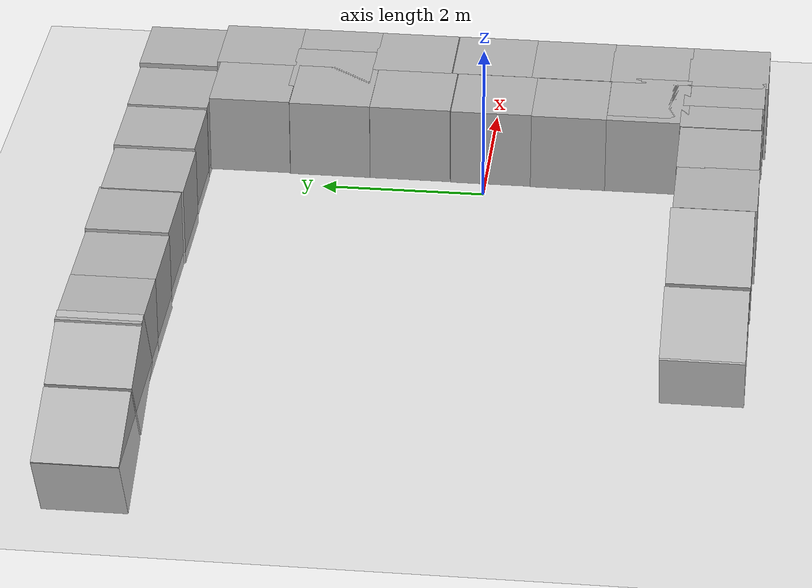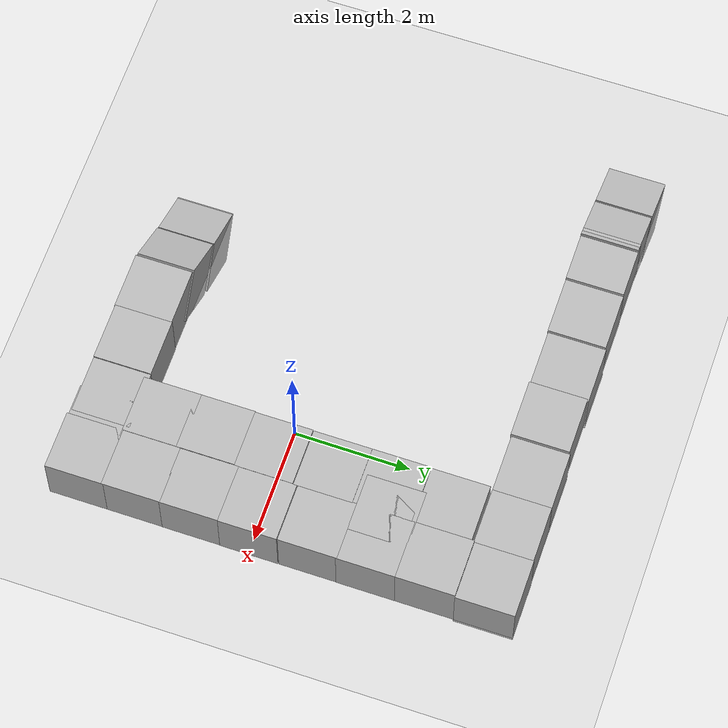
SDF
<sdf version='1.9'>
  <world name='empty'>
    <physics name='1ms' type='ignored'>
      <max_step_size>0.001</max_step_size>
      <real_time_factor>1</real_time_factor>
      <real_time_update_rate>1000</real_time_update_rate>
    </physics>
    <plugin name='gz::sim::systems::Physics' filename='ignition-gazebo-physics-system'/>
    <plugin name='gz::sim::systems::UserCommands' filename='ignition-gazebo-user-commands-system'/>
    <plugin name='gz::sim::systems::SceneBroadcaster' filename='ignition-gazebo-scene-broadcaster-system'/>
    <plugin name='gz::sim::systems::Contact' filename='ignition-gazebo-contact-system'/>
    <gravity>0 0 -9.8</gravity>
    <magnetic_field>6e-06 2.3e-05 -4.2e-05</magnetic_field>
    <atmosphere type='adiabatic'/>
    <scene>
      <ambient>0.4 0.4 0.4 1</ambient>
      <background>0.7 0.7 0.7 1</background>
      <shadows>true</shadows>
    </scene>
    <model name='ground_plane'>
      <static>true</static>
      <link name='link'>
        <collision name='collision'>
          <geometry>
            <plane>
              <normal>0 0 1</normal>
              <size>100 100</size>
            </plane>
          </geometry>
          <surface>
            <friction>
              <ode/>
            </friction>
            <bounce/>
            <contact/>
          </surface>
        </collision>
        <visual name='visual'>
          <geometry>
            <plane>
              <normal>0 0 1</normal>
              <size>100 100</size>
            </plane>
          </geometry>
          <material>
            <ambient>0.8 0.8 0.8 1</ambient>
            <diffuse>0.8 0.8 0.8 1</diffuse>
            <specular>0.8 0.8 0.8 1</specular>
          </material>
        </visual>
        <pose>0 0 0 0 -0 0</pose>
        <inertial>
          <pose>0 0 0 0 -0 0</pose>
          <mass>1</mass>
          <inertia>
            <ixx>1</ixx>
            <ixy>0</ixy>
            <ixz>0</ixz>
            <iyy>1</iyy>
            <iyz>0</iyz>
            <izz>1</izz>
          </inertia>
        </inertial>
        <enable_wind>false</enable_wind>
      </link>
      <pose>0 0 0 0 -0 0</pose>
      <self_collide>false</self_collide>
    </model>
    <model name='box'>
      <pose>1.77554 3.99146 0.428903 0 -0 0</pose>
      <link name='box_link'>
        <inertial>
          <inertia>
            <ixx>0.16666</ixx>
            <ixy>0</ixy>
            <ixz>0</ixz>
            <iyy>0.16666</iyy>
            <iyz>0</iyz>
            <izz>0.16666</izz>
          </inertia>
          <mass>1</mass>
          <pose>0 0 0 0 -0 0</pose>
        </inertial>
        <collision name='box_collision'>
          <geometry>
            <box>
              <size>1 1 1</size>
            </box>
          </geometry>
          <surface>
            <friction>
              <ode/>
            </friction>
            <bounce/>
            <contact/>
          </surface>
        </collision>
        <visual name='box_visual'>
          <geometry>
            <box>
              <size>1 1 1</size>
            </box>
          </geometry>
          <material>
            <ambient>0.3 0.3 0.3 1</ambient>
            <diffuse>0.7 0.7 0.7 1</diffuse>
            <specular>1 1 1 1</specular>
          </material>
        </visual>
        <pose>0 0 0 0 -0 0</pose>
        <enable_wind>false</enable_wind>
      </link>
      <static>false</static>
      <self_collide>false</self_collide>
    </model>
    <model name='box_0'>
      <pose>1.77554 2.9968 0.5 -0 0 -0</pose>
      <link name='box_link'>
        <inertial>
          <inertia>
            <ixx>0.16666</ixx>
            <ixy>0</ixy>
            <ixz>0</ixz>
            <iyy>0.16666</iyy>
            <iyz>0</iyz>
            <izz>0.16666</izz>
          </inertia>
          <mass>1</mass>
          <pose>0 0 0 0 -0 0</pose>
        </inertial>
        <collision name='box_collision'>
          <geometry>
            <box>
              <size>1 1 1</size>
            </box>
          </geometry>
          <surface>
            <friction>
              <ode/>
            </friction>
            <bounce/>
            <contact/>
          </surface>
        </collision>
        <visual name='box_visual'>
          <geometry>
            <box>
              <size>1 1 1</size>
            </box>
          </geometry>
          <material>
            <ambient>0.3 0.3 0.3 1</ambient>
            <diffuse>0.7 0.7 0.7 1</diffuse>
            <specular>1 1 1 1</specular>
          </material>
        </visual>
        <pose>0 0 0 0 -0 0</pose>
        <enable_wind>false</enable_wind>
      </link>
      <static>false</static>
      <self_collide>false</self_collide>
    </model>
    <model name='box_1'>
      <pose>1.77554 2.00214 0.5 0 -0 0</pose>
      <link name='box_link'>
        <inertial>
          <inertia>
            <ixx>0.16666</ixx>
            <ixy>0</ixy>
            <ixz>0</ixz>
            <iyy>0.16666</iyy>
            <iyz>0</iyz>
            <izz>0.16666</izz>
          </inertia>
          <mass>1</mass>
          <pose>0 0 0 0 -0 0</pose>
        </inertial>
        <collision name='box_collision'>
          <geometry>
            <box>
              <size>1 1 1</size>
            </box>
          </geometry>
          <surface>
            <friction>
              <ode/>
            </friction>
            <bounce/>
            <contact/>
          </surface>
        </collision>
        <visual name='box_visual'>
          <geometry>
            <box>
              <size>1 1 1</size>
            </box>
          </geometry>
          <material>
            <ambient>0.3 0.3 0.3 1</ambient>
            <diffuse>0.7 0.7 0.7 1</diffuse>
            <specular>1 1 1 1</specular>
          </material>
        </visual>
        <pose>0 0 0 0 -0 0</pose>
        <enable_wind>false</enable_wind>
      </link>
      <static>false</static>
      <self_collide>false</self_collide>
    </model>
    <model name='box_2'>
      <pose>1.77135 1.0232 0.5 0 -0 0</pose>
      <link name='box_link'>
        <inertial>
          <inertia>
            <ixx>0.16666</ixx>
            <ixy>0</ixy>
            <ixz>0</ixz>
            <iyy>0.16666</iyy>
            <iyz>0</iyz>
            <izz>0.16666</izz>
          </inertia>
          <mass>1</mass>
          <pose>0 0 0 0 -0 0</pose>
        </inertial>
        <collision name='box_collision'>
          <geometry>
            <box>
              <size>1 1 1</size>
            </box>
          </geometry>
          <surface>
            <friction>
              <ode/>
            </friction>
            <bounce/>
            <contact/>
          </surface>
        </collision>
        <visual name='box_visual'>
          <geometry>
            <box>
              <size>1 1 1</size>
            </box>
          </geometry>
          <material>
            <ambient>0.3 0.3 0.3 1</ambient>
            <diffuse>0.7 0.7 0.7 1</diffuse>
            <specular>1 1 1 1</specular>
          </material>
        </visual>
        <pose>0 0 0 0 -0 0</pose>
        <enable_wind>false</enable_wind>
      </link>
      <static>false</static>
      <self_collide>false</self_collide>
    </model>
    <model name='box_3'>
      <pose>1.7728 0.011534 0.5 -0 -0 -0</pose>
      <link name='box_link'>
        <inertial>
          <inertia>
            <ixx>0.16666</ixx>
            <ixy>0</ixy>
            <ixz>0</ixz>
            <iyy>0.16666</iyy>
            <iyz>0</iyz>
            <izz>0.16666</izz>
          </inertia>
          <mass>1</mass>
          <pose>0 0 0 0 -0 0</pose>
        </inertial>
        <collision name='box_collision'>
          <geometry>
            <box>
              <size>1 1 1</size>
            </box>
          </geometry>
          <surface>
            <friction>
              <ode/>
            </friction>
            <bounce/>
            <contact/>
          </surface>
        </collision>
        <visual name='box_visual'>
          <geometry>
            <box>
              <size>1 1 1</size>
            </box>
          </geometry>
          <material>
            <ambient>0.3 0.3 0.3 1</ambient>
            <diffuse>0.7 0.7 0.7 1</diffuse>
            <specular>1 1 1 1</specular>
          </material>
        </visual>
        <pose>0 0 0 0 -0 0</pose>
        <enable_wind>false</enable_wind>
      </link>
      <static>false</static>
      <self_collide>false</self_collide>
    </model>
    <model name='box_4'>
      <pose>1.7674 -0.985244 0.5 0 -0 0</pose>
      <link name='box_link'>
        <inertial>
          <inertia>
            <ixx>0.16666</ixx>
            <ixy>0</ixy>
            <ixz>0</ixz>
            <iyy>0.16666</iyy>
            <iyz>0</iyz>
            <izz>0.16666</izz>
          </inertia>
          <mass>1</mass>
          <pose>0 0 0 0 -0 0</pose>
        </inertial>
        <collision name='box_collision'>
          <geometry>
            <box>
              <size>1 1 1</size>
            </box>
          </geometry>
          <surface>
            <friction>
              <ode/>
            </friction>
            <bounce/>
            <contact/>
          </surface>
        </collision>
        <visual name='box_visual'>
          <geometry>
            <box>
              <size>1 1 1</size>
            </box>
          </geometry>
          <material>
            <ambient>0.3 0.3 0.3 1</ambient>
            <diffuse>0.7 0.7 0.7 1</diffuse>
            <specular>1 1 1 1</specular>
          </material>
        </visual>
        <pose>0 0 0 0 -0 0</pose>
        <enable_wind>false</enable_wind>
      </link>
      <static>false</static>
      <self_collide>false</self_collide>
    </model>
    <model name='box_5'>
      <pose>0.785479 3.97986 0.368711 0 -0 0</pose>
      <link name='box_link'>
        <inertial>
          <inertia>
            <ixx>0.16666</ixx>
            <ixy>0</ixy>
            <ixz>0</ixz>
            <iyy>0.16666</iyy>
            <iyz>0</iyz>
            <izz>0.16666</izz>
          </inertia>
          <mass>1</mass>
          <pose>0 0 0 0 -0 0</pose>
        </inertial>
        <collision name='box_collision'>
          <geometry>
            <box>
              <size>1 1 1</size>
            </box>
          </geometry>
          <surface>
            <friction>
              <ode/>
            </friction>
            <bounce/>
            <contact/>
          </surface>
        </collision>
        <visual name='box_visual'>
          <geometry>
            <box>
              <size>1 1 1</size>
            </box>
          </geometry>
          <material>
            <ambient>0.3 0.3 0.3 1</ambient>
            <diffuse>0.7 0.7 0.7 1</diffuse>
            <specular>1 1 1 1</specular>
          </material>
        </visual>
        <pose>0 0 0 0 -0 0</pose>
        <enable_wind>false</enable_wind>
      </link>
      <static>false</static>
      <self_collide>false</self_collide>
    </model>
    <model name='box_6'>
      <pose>-0.22243 3.98044 0.344727 0 -0 0</pose>
      <link name='box_link'>
        <inertial>
          <inertia>
            <ixx>0.16666</ixx>
            <ixy>0</ixy>
            <ixz>0</ixz>
            <iyy>0.16666</iyy>
            <iyz>0</iyz>
            <izz>0.16666</izz>
          </inertia>
          <mass>1</mass>
          <pose>0 0 0 0 -0 0</pose>
        </inertial>
        <collision name='box_collision'>
          <geometry>
            <box>
              <size>1 1 1</size>
            </box>
          </geometry>
          <surface>
            <friction>
              <ode/>
            </friction>
            <bounce/>
            <contact/>
          </surface>
        </collision>
        <visual name='box_visual'>
          <geometry>
            <box>
              <size>1 1 1</size>
            </box>
          </geometry>
          <material>
            <ambient>0.3 0.3 0.3 1</ambient>
            <diffuse>0.7 0.7 0.7 1</diffuse>
            <specular>1 1 1 1</specular>
          </material>
        </visual>
        <pose>0 0 0 0 -0 0</pose>
        <enable_wind>false</enable_wind>
      </link>
      <static>false</static>
      <self_collide>false</self_collide>
    </model>
    <model name='box_7'>
      <pose>-1.26445 3.95681 0.332748 0 -0 0</pose>
      <link name='box_link'>
        <inertial>
          <inertia>
            <ixx>0.16666</ixx>
            <ixy>0</ixy>
            <ixz>0</ixz>
            <iyy>0.16666</iyy>
            <iyz>0</iyz>
            <izz>0.16666</izz>
          </inertia>
          <mass>1</mass>
          <pose>0 0 0 0 -0 0</pose>
        </inertial>
        <collision name='box_collision'>
          <geometry>
            <box>
              <size>1 1 1</size>
            </box>
          </geometry>
          <surface>
            <friction>
              <ode/>
            </friction>
            <bounce/>
            <contact/>
          </surface>
        </collision>
        <visual name='box_visual'>
          <geometry>
            <box>
              <size>1 1 1</size>
            </box>
          </geometry>
          <material>
            <ambient>0.3 0.3 0.3 1</ambient>
            <diffuse>0.7 0.7 0.7 1</diffuse>
            <specular>1 1 1 1</specular>
          </material>
        </visual>
        <pose>0 0 0 0 -0 0</pose>
        <enable_wind>false</enable_wind>
      </link>
      <static>false</static>
      <self_collide>false</self_collide>
    </model>
    <model name='box_8'>
      <pose>-2.22842 3.97844 0.320328 0 -0 0</pose>
      <link name='box_link'>
        <inertial>
          <inertia>
            <ixx>0.16666</ixx>
            <ixy>0</ixy>
            <ixz>0</ixz>
            <iyy>0.16666</iyy>
            <iyz>0</iyz>
            <izz>0.16666</izz>
          </inertia>
          <mass>1</mass>
          <pose>0 0 0 0 -0 0</pose>
        </inertial>
        <collision name='box_collision'>
          <geometry>
            <box>
              <size>1 1 1</size>
            </box>
          </geometry>
          <surface>
            <friction>
              <ode/>
            </friction>
            <bounce/>
            <contact/>
          </surface>
        </collision>
        <visual name='box_visual'>
          <geometry>
            <box>
              <size>1 1 1</size>
            </box>
          </geometry>
          <material>
            <ambient>0.3 0.3 0.3 1</ambient>
            <diffuse>0.7 0.7 0.7 1</diffuse>
            <specular>1 1 1 1</specular>
          </material>
        </visual>
        <pose>0 0 0 0 -0 0</pose>
        <enable_wind>false</enable_wind>
      </link>
      <static>false</static>
      <self_collide>false</self_collide>
    </model>
    <model name='box_9'>
      <pose>-3.27019 3.96096 0.305282 0 -0 0</pose>
      <link name='box_link'>
        <inertial>
          <inertia>
            <ixx>0.16666</ixx>
            <ixy>0</ixy>
            <ixz>0</ixz>
            <iyy>0.16666</iyy>
            <iyz>0</iyz>
            <izz>0.16666</izz>
          </inertia>
          <mass>1</mass>
          <pose>0 0 0 0 -0 0</pose>
        </inertial>
        <collision name='box_collision'>
          <geometry>
            <box>
              <size>1 1 1</size>
            </box>
          </geometry>
          <surface>
            <friction>
              <ode/>
            </friction>
            <bounce/>
            <contact/>
          </surface>
        </collision>
        <visual name='box_visual'>
          <geometry>
            <box>
              <size>1 1 1</size>
            </box>
          </geometry>
          <material>
            <ambient>0.3 0.3 0.3 1</ambient>
            <diffuse>0.7 0.7 0.7 1</diffuse>
            <specular>1 1 1 1</specular>
          </material>
        </visual>
        <pose>0 0 0 0 -0 0</pose>
        <enable_wind>false</enable_wind>
      </link>
      <static>false</static>
      <self_collide>false</self_collide>
    </model>
    <model name='box_10'>
      <pose>1.76333 -1.97178 0.5 0 -0 0</pose>
      <link name='box_link'>
        <inertial>
          <inertia>
            <ixx>0.16666</ixx>
            <ixy>0</ixy>
            <ixz>0</ixz>
            <iyy>0.16666</iyy>
            <iyz>0</iyz>
            <izz>0.16666</izz>
          </inertia>
          <mass>1</mass>
          <pose>0 0 0 0 -0 0</pose>
        </inertial>
        <collision name='box_collision'>
          <geometry>
            <box>
              <size>1 1 1</size>
            </box>
          </geometry>
          <surface>
            <friction>
              <ode/>
            </friction>
            <bounce/>
            <contact/>
          </surface>
        </collision>
        <visual name='box_visual'>
          <geometry>
            <box>
              <size>1 1 1</size>
            </box>
          </geometry>
          <material>
            <ambient>0.3 0.3 0.3 1</ambient>
            <diffuse>0.7 0.7 0.7 1</diffuse>
            <specular>1 1 1 1</specular>
          </material>
        </visual>
        <pose>0 0 0 0 -0 0</pose>
        <enable_wind>false</enable_wind>
      </link>
      <static>false</static>
      <self_collide>false</self_collide>
    </model>
    <model name='box_11'>
      <pose>1.76333 -2.94207 0.5 0 -0 0</pose>
      <link name='box_link'>
        <inertial>
          <inertia>
            <ixx>0.16666</ixx>
            <ixy>0</ixy>
            <ixz>0</ixz>
            <iyy>0.16666</iyy>
            <iyz>0</iyz>
            <izz>0.16666</izz>
          </inertia>
          <mass>1</mass>
          <pose>0 0 0 0 -0 0</pose>
        </inertial>
        <collision name='box_collision'>
          <geometry>
            <box>
              <size>1 1 1</size>
            </box>
          </geometry>
          <surface>
            <friction>
              <ode/>
            </friction>
            <bounce/>
            <contact/>
          </surface>
        </collision>
        <visual name='box_visual'>
          <geometry>
            <box>
              <size>1 1 1</size>
            </box>
          </geometry>
          <material>
            <ambient>0.3 0.3 0.3 1</ambient>
            <diffuse>0.7 0.7 0.7 1</diffuse>
            <specular>1 1 1 1</specular>
          </material>
        </visual>
        <pose>0 0 0 0 -0 0</pose>
        <enable_wind>false</enable_wind>
      </link>
      <static>false</static>
      <self_collide>false</self_collide>
    </model>
    <model name='box_12'>
      <pose>0.686245 -2.89179 0.5 0 -0 0</pose>
      <link name='box_link'>
        <inertial>
          <inertia>
            <ixx>0.16666</ixx>
            <ixy>0</ixy>
            <ixz>0</ixz>
            <iyy>0.16666</iyy>
            <iyz>0</iyz>
            <izz>0.16666</izz>
          </inertia>
          <mass>1</mass>
          <pose>0 0 0 0 -0 0</pose>
        </inertial>
        <collision name='box_collision'>
          <geometry>
            <box>
              <size>1 1 1</size>
            </box>
          </geometry>
          <surface>
            <friction>
              <ode/>
            </friction>
            <bounce/>
            <contact/>
          </surface>
        </collision>
        <visual name='box_visual'>
          <geometry>
            <box>
              <size>1 1 1</size>
            </box>
          </geometry>
          <material>
            <ambient>0.3 0.3 0.3 1</ambient>
            <diffuse>0.7 0.7 0.7 1</diffuse>
            <specular>1 1 1 1</specular>
          </material>
        </visual>
        <pose>0 0 0 0 -0 0</pose>
        <enable_wind>false</enable_wind>
      </link>
      <static>false</static>
      <self_collide>false</self_collide>
    </model>
    <model name='box_13'>
      <pose>-0.326447 -2.90086 0.5 0 -0 0</pose>
      <link name='box_link'>
        <inertial>
          <inertia>
            <ixx>0.16666</ixx>
            <ixy>0</ixy>
            <ixz>0</ixz>
            <iyy>0.16666</iyy>
            <iyz>0</iyz>
            <izz>0.16666</izz>
          </inertia>
          <mass>1</mass>
          <pose>0 0 0 0 -0 0</pose>
        </inertial>
        <collision name='box_collision'>
          <geometry>
            <box>
              <size>1 1 1</size>
            </box>
          </geometry>
          <surface>
            <friction>
              <ode/>
            </friction>
            <bounce/>
            <contact/>
          </surface>
        </collision>
        <visual name='box_visual'>
          <geometry>
            <box>
              <size>1 1 1</size>
            </box>
          </geometry>
          <material>
            <ambient>0.3 0.3 0.3 1</ambient>
            <diffuse>0.7 0.7 0.7 1</diffuse>
            <specular>1 1 1 1</specular>
          </material>
        </visual>
        <pose>0 0 0 0 -0 0</pose>
        <enable_wind>false</enable_wind>
      </link>
      <static>false</static>
      <self_collide>false</self_collide>
    </model>
    <model name='box_14'>
      <pose>-1.30703 -2.91008 0.5 0 -0 0</pose>
      <link name='box_link'>
        <inertial>
          <inertia>
            <ixx>0.16666</ixx>
            <ixy>0</ixy>
            <ixz>0</ixz>
            <iyy>0.16666</iyy>
            <iyz>0</iyz>
            <izz>0.16666</izz>
          </inertia>
          <mass>1</mass>
          <pose>0 0 0 0 -0 0</pose>
        </inertial>
        <collision name='box_collision'>
          <geometry>
            <box>
              <size>1 1 1</size>
            </box>
          </geometry>
          <surface>
            <friction>
              <ode/>
            </friction>
            <bounce/>
            <contact/>
          </surface>
        </collision>
        <visual name='box_visual'>
          <geometry>
            <box>
              <size>1 1 1</size>
            </box>
          </geometry>
          <material>
            <ambient>0.3 0.3 0.3 1</ambient>
            <diffuse>0.7 0.7 0.7 1</diffuse>
            <specular>1 1 1 1</specular>
          </material>
        </visual>
        <pose>0 0 0 0 -0 0</pose>
        <enable_wind>false</enable_wind>
      </link>
      <static>false</static>
      <self_collide>false</self_collide>
    </model>
    <model name='box_15'>
      <pose>-1.98187 -2.88626 0.322939 0 -0.582153 0</pose>
      <link name='box_link'>
        <inertial>
          <inertia>
            <ixx>0.16666</ixx>
            <ixy>0</ixy>
            <ixz>0</ixz>
            <iyy>0.16666</iyy>
            <iyz>0</iyz>
            <izz>0.16666</izz>
          </inertia>
          <mass>1</mass>
          <pose>0 0 0 0 -0 0</pose>
        </inertial>
        <collision name='box_collision'>
          <geometry>
            <box>
              <size>1 1 1</size>
            </box>
          </geometry>
          <surface>
            <friction>
              <ode/>
            </friction>
            <bounce/>
            <contact/>
          </surface>
        </collision>
        <visual name='box_visual'>
          <geometry>
            <box>
              <size>1 1 1</size>
            </box>
          </geometry>
          <material>
            <ambient>0.3 0.3 0.3 1</ambient>
            <diffuse>0.7 0.7 0.7 1</diffuse>
            <specular>1 1 1 1</specular>
          </material>
        </visual>
        <pose>0 0 0 0 -0 0</pose>
        <enable_wind>false</enable_wind>
      </link>
      <static>false</static>
      <self_collide>false</self_collide>
    </model>
    <model name='box_16'>
      <pose>-2.91378 -2.87767 -0.235228 3.14159 -1.0896 3.14159</pose>
      <link name='box_link'>
        <inertial>
          <inertia>
            <ixx>0.16666</ixx>
            <ixy>0</ixy>
            <ixz>0</ixz>
            <iyy>0.16666</iyy>
            <iyz>0</iyz>
            <izz>0.16666</izz>
          </inertia>
          <mass>1</mass>
          <pose>0 0 0 0 -0 0</pose>
        </inertial>
        <collision name='box_collision'>
          <geometry>
            <box>
              <size>1 1 1</size>
            </box>
          </geometry>
          <surface>
            <friction>
              <ode/>
            </friction>
            <bounce/>
            <contact/>
          </surface>
        </collision>
        <visual name='box_visual'>
          <geometry>
            <box>
              <size>1 1 1</size>
            </box>
          </geometry>
          <material>
            <ambient>0.3 0.3 0.3 1</ambient>
            <diffuse>0.7 0.7 0.7 1</diffuse>
            <specular>1 1 1 1</specular>
          </material>
        </visual>
        <pose>0 0 0 0 -0 0</pose>
        <enable_wind>false</enable_wind>
      </link>
      <static>false</static>
      <self_collide>false</self_collide>
    </model>
    <model name='box_17'>
      <pose>0.798578 2.9528 0.5 0 -0 0</pose>
      <link name='box_link'>
        <inertial>
          <inertia>
            <ixx>0.16666</ixx>
            <ixy>0</ixy>
            <ixz>0</ixz>
            <iyy>0.16666</iyy>
            <iyz>0</iyz>
            <izz>0.16666</izz>
          </inertia>
          <mass>1</mass>
          <pose>0 0 0 0 -0 0</pose>
        </inertial>
        <collision name='box_collision'>
          <geometry>
            <box>
              <size>1 1 1</size>
            </box>
          </geometry>
          <surface>
            <friction>
              <ode/>
            </friction>
            <bounce/>
            <contact/>
          </surface>
        </collision>
        <visual name='box_visual'>
          <geometry>
            <box>
              <size>1 1 1</size>
            </box>
          </geometry>
          <material>
            <ambient>0.3 0.3 0.3 1</ambient>
            <diffuse>0.7 0.7 0.7 1</diffuse>
            <specular>1 1 1 1</specular>
          </material>
        </visual>
        <pose>0 0 0 0 -0 0</pose>
        <enable_wind>false</enable_wind>
      </link>
      <static>false</static>
      <self_collide>false</self_collide>
    </model>
    <model name='box_18'>
      <pose>0.781581 1.94725 0.5 0 -0 0</pose>
      <link name='box_link'>
        <inertial>
          <inertia>
            <ixx>0.16666</ixx>
            <ixy>0</ixy>
            <ixz>0</ixz>
            <iyy>0.16666</iyy>
            <iyz>0</iyz>
            <izz>0.16666</izz>
          </inertia>
          <mass>1</mass>
          <pose>0 0 0 0 -0 0</pose>
        </inertial>
        <collision name='box_collision'>
          <geometry>
            <box>
              <size>1 1 1</size>
            </box>
          </geometry>
          <surface>
            <friction>
              <ode/>
            </friction>
            <bounce/>
            <contact/>
          </surface>
        </collision>
        <visual name='box_visual'>
          <geometry>
            <box>
              <size>1 1 1</size>
            </box>
          </geometry>
          <material>
            <ambient>0.3 0.3 0.3 1</ambient>
            <diffuse>0.7 0.7 0.7 1</diffuse>
            <specular>1 1 1 1</specular>
          </material>
        </visual>
        <pose>0 0 0 0 -0 0</pose>
        <enable_wind>false</enable_wind>
      </link>
      <static>false</static>
      <self_collide>false</self_collide>
    </model>
    <model name='box_19'>
      <pose>0.781581 0.945847 0.5 0 -0 0</pose>
      <link name='box_link'>
        <inertial>
          <inertia>
            <ixx>0.16666</ixx>
            <ixy>0</ixy>
            <ixz>0</ixz>
            <iyy>0.16666</iyy>
            <iyz>0</iyz>
            <izz>0.16666</izz>
          </inertia>
          <mass>1</mass>
          <pose>0 0 0 0 -0 0</pose>
        </inertial>
        <collision name='box_collision'>
          <geometry>
            <box>
              <size>1 1 1</size>
            </box>
          </geometry>
          <surface>
            <friction>
              <ode/>
            </friction>
            <bounce/>
            <contact/>
          </surface>
        </collision>
        <visual name='box_visual'>
          <geometry>
            <box>
              <size>1 1 1</size>
            </box>
          </geometry>
          <material>
            <ambient>0.3 0.3 0.3 1</ambient>
            <diffuse>0.7 0.7 0.7 1</diffuse>
            <specular>1 1 1 1</specular>
          </material>
        </visual>
        <pose>0 0 0 0 -0 0</pose>
        <enable_wind>false</enable_wind>
      </link>
      <static>false</static>
      <self_collide>false</self_collide>
    </model>
    <model name='box_20'>
      <pose>0.771605 -0.064283 0.5 0 -0 0</pose>
      <link name='box_link'>
        <inertial>
          <inertia>
            <ixx>0.16666</ixx>
            <ixy>0</ixy>
            <ixz>0</ixz>
            <iyy>0.16666</iyy>
            <iyz>0</iyz>
            <izz>0.16666</izz>
          </inertia>
          <mass>1</mass>
          <pose>0 0 0 0 -0 0</pose>
        </inertial>
        <collision name='box_collision'>
          <geometry>
            <box>
              <size>1 1 1</size>
            </box>
          </geometry>
          <surface>
            <friction>
              <ode/>
            </friction>
            <bounce/>
            <contact/>
          </surface>
        </collision>
        <visual name='box_visual'>
          <geometry>
            <box>
              <size>1 1 1</size>
            </box>
          </geometry>
          <material>
            <ambient>0.3 0.3 0.3 1</ambient>
            <diffuse>0.7 0.7 0.7 1</diffuse>
            <specular>1 1 1 1</specular>
          </material>
        </visual>
        <pose>0 0 0 0 -0 0</pose>
        <enable_wind>false</enable_wind>
      </link>
      <static>false</static>
      <self_collide>false</self_collide>
    </model>
    <model name='box_21'>
      <pose>0.759594 -1.0617 0.5 0 -0 0</pose>
      <link name='box_link'>
        <inertial>
          <inertia>
            <ixx>0.16666</ixx>
            <ixy>0</ixy>
            <ixz>0</ixz>
            <iyy>0.16666</iyy>
            <iyz>0</iyz>
            <izz>0.16666</izz>
          </inertia>
          <mass>1</mass>
          <pose>0 0 0 0 -0 0</pose>
        </inertial>
        <collision name='box_collision'>
          <geometry>
            <box>
              <size>1 1 1</size>
            </box>
          </geometry>
          <surface>
            <friction>
              <ode/>
            </friction>
            <bounce/>
            <contact/>
          </surface>
        </collision>
        <visual name='box_visual'>
          <geometry>
            <box>
              <size>1 1 1</size>
            </box>
          </geometry>
          <material>
            <ambient>0.3 0.3 0.3 1</ambient>
            <diffuse>0.7 0.7 0.7 1</diffuse>
            <specular>1 1 1 1</specular>
          </material>
        </visual>
        <pose>0 0 0 0 -0 0</pose>
        <enable_wind>false</enable_wind>
      </link>
      <static>false</static>
      <self_collide>false</self_collide>
    </model>
    <model name='box_22'>
      <pose>1.23646 -2.91034 0.5 0 -0 0</pose>
      <link name='box_link'>
        <inertial>
          <inertia>
            <ixx>0.16666</ixx>
            <ixy>0</ixy>
            <ixz>0</ixz>
            <iyy>0.16666</iyy>
            <iyz>0</iyz>
            <izz>0.16666</izz>
          </inertia>
          <mass>1</mass>
          <pose>0 0 0 0 -0 0</pose>
        </inertial>
        <collision name='box_collision'>
          <geometry>
            <box>
              <size>1 1 1</size>
            </box>
          </geometry>
          <surface>
            <friction>
              <ode/>
            </friction>
            <bounce/>
            <contact/>
          </surface>
        </collision>
        <visual name='box_visual'>
          <geometry>
            <box>
              <size>1 1 1</size>
            </box>
          </geometry>
          <material>
            <ambient>0.3 0.3 0.3 1</ambient>
            <diffuse>0.7 0.7 0.7 1</diffuse>
            <specular>1 1 1 1</specular>
          </material>
        </visual>
        <pose>0 0 0 0 -0 0</pose>
        <enable_wind>false</enable_wind>
      </link>
      <static>false</static>
      <self_collide>false</self_collide>
    </model>
    <model name='box_23'>
      <pose>0.878172 -1.9893 0.5 0 -0 0</pose>
      <link name='box_link'>
        <inertial>
          <inertia>
            <ixx>0.16666</ixx>
            <ixy>0</ixy>
            <ixz>0</ixz>
            <iyy>0.16666</iyy>
            <iyz>0</iyz>
            <izz>0.16666</izz>
          </inertia>
          <mass>1</mass>
          <pose>0 0 0 0 -0 0</pose>
        </inertial>
        <collision name='box_collision'>
          <geometry>
            <box>
              <size>1 1 1</size>
            </box>
          </geometry>
          <surface>
            <friction>
              <ode/>
            </friction>
            <bounce/>
            <contact/>
          </surface>
        </collision>
        <visual name='box_visual'>
          <geometry>
            <box>
              <size>1 1 1</size>
            </box>
          </geometry>
          <material>
            <ambient>0.3 0.3 0.3 1</ambient>
            <diffuse>0.7 0.7 0.7 1</diffuse>
            <specular>1 1 1 1</specular>
          </material>
        </visual>
        <pose>0 0 0 0 -0 0</pose>
        <enable_wind>false</enable_wind>
      </link>
      <static>false</static>
      <self_collide>false</self_collide>
    </model>
    <model name='box_24'>
      <pose>1.23646 2.01766 0.5 0 -0 0</pose>
      <link name='box_link'>
        <inertial>
          <inertia>
            <ixx>0.16666</ixx>
            <ixy>0</ixy>
            <ixz>0</ixz>
            <iyy>0.16666</iyy>
            <iyz>0</iyz>
            <izz>0.16666</izz>
          </inertia>
          <mass>1</mass>
          <pose>0 0 0 0 -0 0</pose>
        </inertial>
        <collision name='box_collision'>
          <geometry>
            <box>
              <size>1 1 1</size>
            </box>
          </geometry>
          <surface>
            <friction>
              <ode/>
            </friction>
            <bounce/>
            <contact/>
          </surface>
        </collision>
        <visual name='box_visual'>
          <geometry>
            <box>
              <size>1 1 1</size>
            </box>
          </geometry>
          <material>
            <ambient>0.3 0.3 0.3 1</ambient>
            <diffuse>0.7 0.7 0.7 1</diffuse>
            <specular>1 1 1 1</specular>
          </material>
        </visual>
        <pose>0 0 0 0 -0 0</pose>
        <enable_wind>false</enable_wind>
      </link>
      <static>false</static>
      <self_collide>false</self_collide>
    </model>
    <model name='box_25'>
      <pose>0.758795 -1.98761 0.5 0 -0 0</pose>
      <link name='box_link'>
        <inertial>
          <inertia>
            <ixx>0.16666</ixx>
            <ixy>0</ixy>
            <ixz>0</ixz>
            <iyy>0.16666</iyy>
            <iyz>0</iyz>
            <izz>0.16666</izz>
          </inertia>
          <mass>1</mass>
          <pose>0 0 0 0 -0 0</pose>
        </inertial>
        <collision name='box_collision'>
          <geometry>
            <box>
              <size>1 1 1</size>
            </box>
          </geometry>
          <surface>
            <friction>
              <ode/>
            </friction>
            <bounce/>
            <contact/>
          </surface>
        </collision>
        <visual name='box_visual'>
          <geometry>
            <box>
              <size>1 1 1</size>
            </box>
          </geometry>
          <material>
            <ambient>0.3 0.3 0.3 1</ambient>
            <diffuse>0.7 0.7 0.7 1</diffuse>
            <specular>1 1 1 1</specular>
          </material>
        </visual>
        <pose>0 0 0 0 -0 0</pose>
        <enable_wind>false</enable_wind>
      </link>
      <static>false</static>
      <self_collide>false</self_collide>
    </model>
    <model name='box_26'>
      <pose>-5.83964 3.95195 -0.241125 0 -0.433608 0</pose>
      <link name='box_link'>
        <inertial>
          <inertia>
            <ixx>0.16666</ixx>
            <ixy>0</ixy>
            <ixz>0</ixz>
            <iyy>0.16666</iyy>
            <iyz>0</iyz>
            <izz>0.16666</izz>
          </inertia>
          <mass>1</mass>
          <pose>0 0 0 0 -0 0</pose>
        </inertial>
        <collision name='box_collision'>
          <geometry>
            <box>
              <size>1 1 1</size>
            </box>
          </geometry>
          <surface>
            <friction>
              <ode/>
            </friction>
            <bounce/>
            <contact/>
          </surface>
        </collision>
        <visual name='box_visual'>
          <geometry>
            <box>
              <size>1 1 1</size>
            </box>
          </geometry>
          <material>
            <ambient>0.3 0.3 0.3 1</ambient>
            <diffuse>0.7 0.7 0.7 1</diffuse>
            <specular>1 1 1 1</specular>
          </material>
        </visual>
        <pose>0 0 0 0 -0 0</pose>
        <enable_wind>false</enable_wind>
      </link>
      <static>false</static>
      <self_collide>false</self_collide>
    </model>
    <model name='box_27'>
      <pose>-4.29746 3.956 0.32488 0 -0 0</pose>
      <link name='box_link'>
        <inertial>
          <inertia>
            <ixx>0.16666</ixx>
            <ixy>0</ixy>
            <ixz>0</ixz>
            <iyy>0.16666</iyy>
            <iyz>0</iyz>
            <izz>0.16666</izz>
          </inertia>
          <mass>1</mass>
          <pose>0 0 0 0 -0 0</pose>
        </inertial>
        <collision name='box_collision'>
          <geometry>
            <box>
              <size>1 1 1</size>
            </box>
          </geometry>
          <surface>
            <friction>
              <ode/>
            </friction>
            <bounce/>
            <contact/>
          </surface>
        </collision>
        <visual name='box_visual'>
          <geometry>
            <box>
              <size>1 1 1</size>
            </box>
          </geometry>
          <material>
            <ambient>0.3 0.3 0.3 1</ambient>
            <diffuse>0.7 0.7 0.7 1</diffuse>
            <specular>1 1 1 1</specular>
          </material>
        </visual>
        <pose>0 0 0 0 -0 0</pose>
        <enable_wind>false</enable_wind>
      </link>
      <static>false</static>
      <self_collide>false</self_collide>
    </model>
    <model name='box_28'>
      <pose>-4.8923 3.95104 0.19848 0 -0.444138 0</pose>
      <link name='box_link'>
        <inertial>
          <inertia>
            <ixx>0.16666</ixx>
            <ixy>0</ixy>
            <ixz>0</ixz>
            <iyy>0.16666</iyy>
            <iyz>0</iyz>
            <izz>0.16666</izz>
          </inertia>
          <mass>1</mass>
          <pose>0 0 0 0 -0 0</pose>
        </inertial>
        <collision name='box_collision'>
          <geometry>
            <box>
              <size>1 1 1</size>
            </box>
          </geometry>
          <surface>
            <friction>
              <ode/>
            </friction>
            <bounce/>
            <contact/>
          </surface>
        </collision>
        <visual name='box_visual'>
          <geometry>
            <box>
              <size>1 1 1</size>
            </box>
          </geometry>
          <material>
            <ambient>0.3 0.3 0.3 1</ambient>
            <diffuse>0.7 0.7 0.7 1</diffuse>
            <specular>1 1 1 1</specular>
          </material>
        </visual>
        <pose>0 0 0 0 -0 0</pose>
        <enable_wind>false</enable_wind>
      </link>
      <static>false</static>
      <self_collide>false</self_collide>
    </model>
    <light name='sun' type='directional'>
      <pose>0 0 10 0 -0 0</pose>
      <cast_shadows>true</cast_shadows>
      <intensity>1</intensity>
      <direction>-0.5 0.1 -0.9</direction>
      <diffuse>0.8 0.8 0.8 1</diffuse>
      <specular>0.2 0.2 0.2 1</specular>
      <attenuation>
        <range>1000</range>
        <linear>0.01</linear>
        <constant>0.90000000000000002</constant>
        <quadratic>0.001</quadratic>
      </attenuation>
      <spot>
        <inner_angle>0</inner_angle>
        <outer_angle>0</outer_angle>
        <falloff>0</falloff>
      </spot>
    </light>
  </world>
</sdf>
